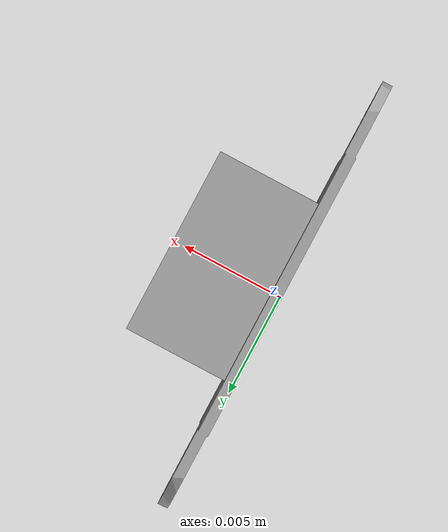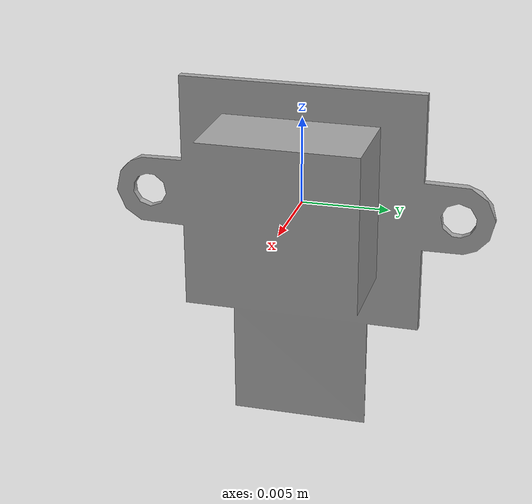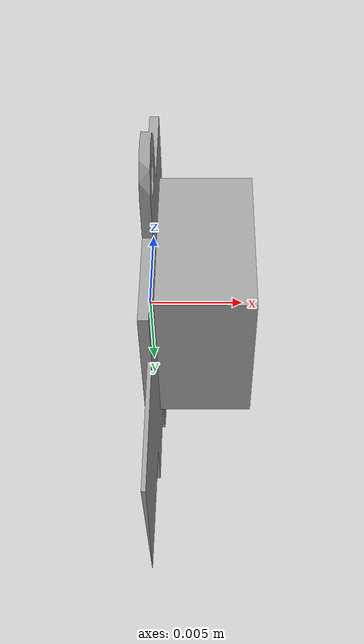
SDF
<?xml version="1.0" encoding="UTF-8"?>
<sdf version="1.9">
  <model name="orange_pi_camera">
    <self_collide>false</self_collide>
    <static>false</static>
    <link name="orange_pi_camera_link">
      <inertial>
        <mass>0.000001</mass>
        <inertia>
          <ixx>1e-12</ixx>
          <iyy>1e-12</iyy>
          <izz>1e-12</izz>
          <ixy>0</ixy>
          <ixz>0</ixz>
          <iyz>0</iyz>
        </inertia>
      </inertial>

      <visual name="orange_pi_camera_visual">
        <geometry>
          <mesh>
            <!-- The normalized export is already in metres. -->
            <scale>1 1 1</scale>
            <uri>model://orange_pi_camera/meshes/orange_pi_camera.obj</uri>
          </mesh>
        </geometry>
        <!-- Gazebo Sim does not reliably apply the OBJ's MTL diffuse colour.
             Keep the supplied model's neutral-grey finish explicit here. -->
        <material>
          <ambient>0.627451 0.627451 0.627451 1</ambient>
          <diffuse>0.627451 0.627451 0.627451 1</diffuse>
          <specular>1 1 1 1</specular>
        </material>
      </visual>

      <sensor name="imager" type="camera">
        <!-- The normalized model uses link-local +X as its physical lens axis,
             which matches Gazebo's camera-forward convention. The optical
             centre is 6 mm forward of the model origin. -->
        <pose>0.006 0 0 0 0 0</pose>
        <camera>
          <horizontal_fov>1.354811094812</horizontal_fov>
          <image>
            <width>1408</width>
            <height>792</height>
            <format>R8G8B8</format>
          </image>
          <clip>
            <near>0.01</near>
            <far>50</far>
          </clip>
        </camera>
        <!-- Activate on the selected Gazebo/ROS subscriber. This keeps the
             unselected camera mode from rendering in parallel. -->
        <always_on>false</always_on>
        <update_rate>30</update_rate>
        <visualize>false</visualize>
      </sensor>

      <sensor name="imager_fullres" type="camera">
        <pose>0.006 0 0 0 0 0</pose>
        <camera>
          <horizontal_fov>1.354811094812</horizontal_fov>
          <image>
            <width>4224</width>
            <height>3136</height>
            <format>R8G8B8</format>
          </image>
          <clip>
            <near>0.01</near>
            <far>50</far>
          </clip>
        </camera>
        <always_on>false</always_on>
        <update_rate>30</update_rate>
        <visualize>false</visualize>
      </sensor>
    </link>
  </model>
</sdf>
